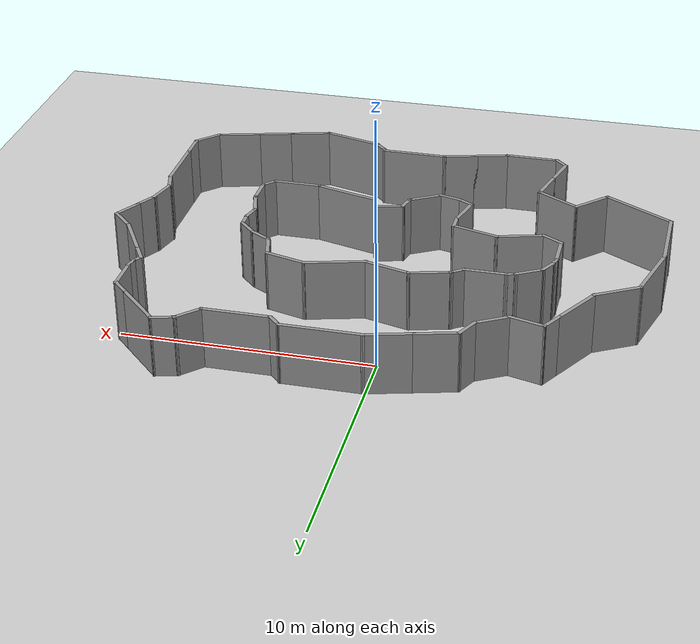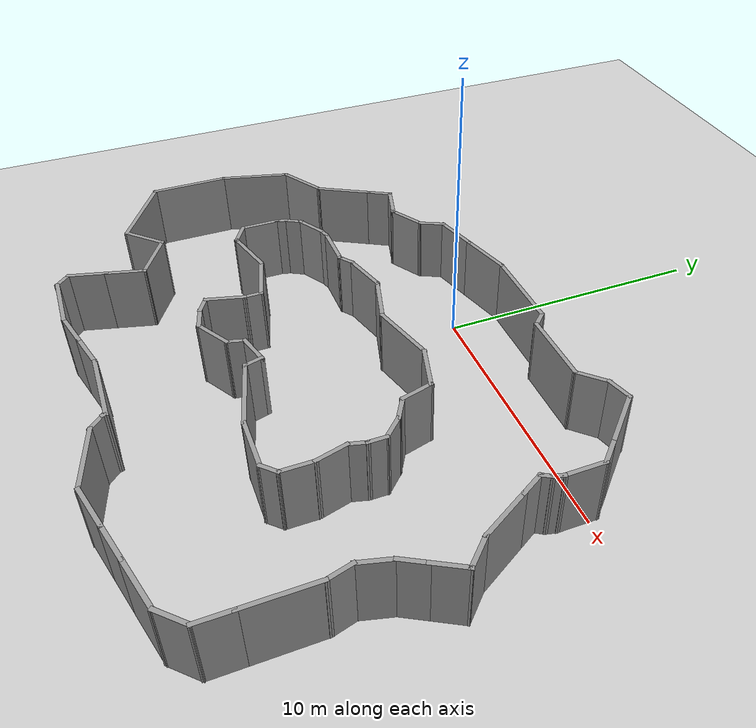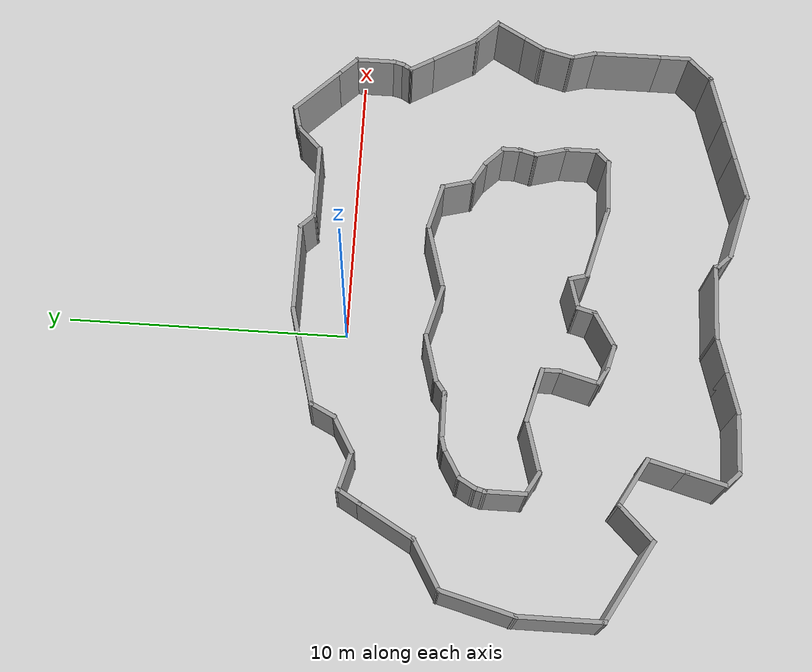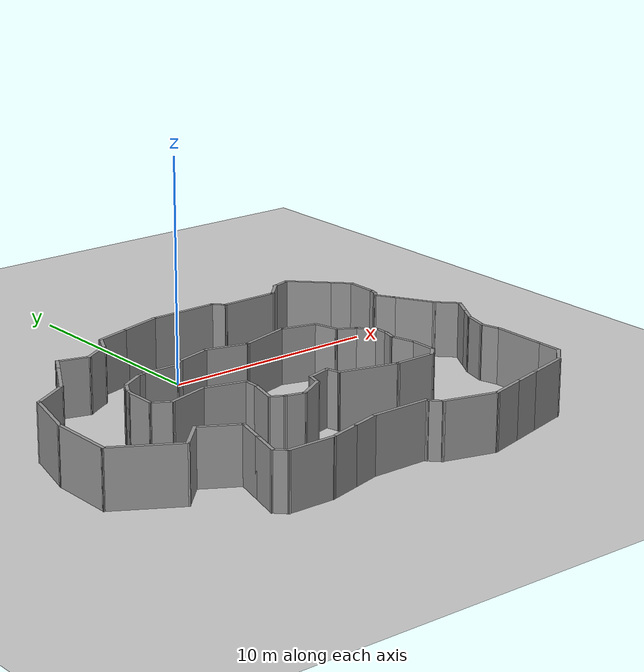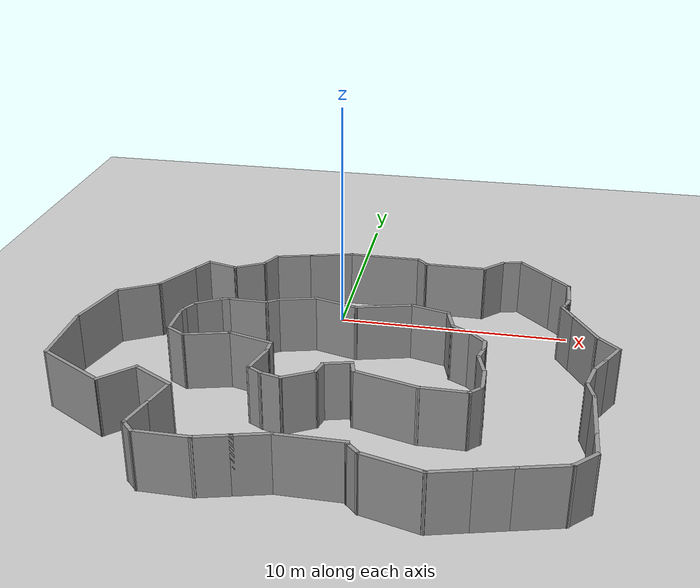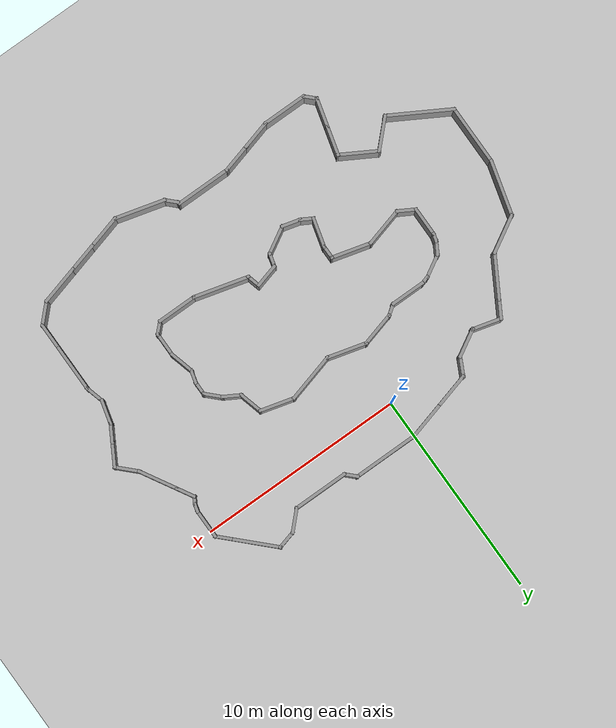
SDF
<sdf version="1.7">
 <world name="default">
  <light name="sun" type="directional">
   <pose>0 0 10 0 -0 0</pose>
   <diffuse>0.8 0.8 0.8 1</diffuse>
   <specular>0.2 0.2 0.2 1</specular>
   <attenuation>
    <range>1000</range>
    <constant>0.9</constant>
    <linear>0.01</linear>
    <quadratic>0.001</quadratic>
   </attenuation>
   <direction>-0.5 0.1 -0.9</direction>
   <spot><inner_angle>0</inner_angle><outer_angle>0</outer_angle><falloff>0</falloff></spot>
  </light>
  <model name="ground_plane">
   <static>1</static>
   <link name="link">
    <collision name="collision">
     <geometry><plane><normal>0 0 1</normal><size>100 100</size></plane></geometry>
     <surface>
      <contact><collide_bitmask>65535</collide_bitmask></contact>
      <friction><ode><mu>100</mu><mu2>50</mu2></ode></friction>
     </surface>
    </collision>
    <visual name="visual">
     <cast_shadows>0</cast_shadows>
     <geometry><plane><normal>0 0 1</normal><size>100 100</size></plane></geometry>
     <material>
      <script><uri>file://media/materials/scripts/gazebo.material</uri><name>Gazebo/Grey</name></script>
     </material>
    </visual>
   </link>
  </model>
  <gravity>0 0 -9.8</gravity>
  <magnetic_field>6e-06 2.3e-05 -4.2e-05</magnetic_field>
  <atmosphere type="adiabatic"/>
  <physics type="ode">
   <max_step_size>0.001</max_step_size>
   <real_time_factor>1</real_time_factor>
   <real_time_update_rate>1000</real_time_update_rate>
  </physics>
  <scene><ambient>0.4 0.4 0.4 1</ambient><background>0.7 0.7 0.7 1</background><shadows>1</shadows></scene>
  <spherical_coordinates>
   <surface_model>EARTH_WGS84</surface_model>
   <latitude_deg>0</latitude_deg>
   <longitude_deg>0</longitude_deg>
   <elevation>0</elevation>
   <heading_deg>0</heading_deg>
  </spherical_coordinates>
  <model name="Untitled">
   <pose>0.944853 -5.73233 0 0 -0 0</pose>
   <link name="Wall_100">
    <collision name="Wall_100_Collision">
     <geometry><box><size>1 0.15 2.5</size></box></geometry>
     <pose>0 0 1.25 0 -0 0</pose>
    </collision>
    <visual name="Wall_100_Visual">
     <pose>0 0 1.25 0 -0 0</pose>
     <geometry><box><size>1 0.15 2.5</size></box></geometry>
     <material>
      <script><uri>file://media/materials/scripts/gazebo.material</uri><name>Gazebo/Grey</name></script>
      <ambient>1 1 1 1</ambient>
     </material>
     <meta><layer>0</layer></meta>
    </visual>
    <pose>6.45232 8.00074 0 0 -0 0.261799</pose>
   </link>
   <link name="Wall_101">
    <collision name="Wall_101_Collision">
     <geometry><box><size>2.25 0.15 2.5</size></box></geometry>
     <pose>0 0 1.25 0 -0 0</pose>
    </collision>
    <visual name="Wall_101_Visual">
     <pose>0 0 1.25 0 -0 0</pose>
     <geometry><box><size>2.25 0.15 2.5</size></box></geometry>
     <material>
      <script><uri>file://media/materials/scripts/gazebo.material</uri><name>Gazebo/Grey</name></script>
      <ambient>1 1 1 1</ambient>
     </material>
     <meta><layer>0</layer></meta>
    </visual>
    <pose>7.6053 7.36828 0 0 -0 -0.785398</pose>
   </link>
   <link name="Wall_102">
    <collision name="Wall_102_Collision">
     <geometry><box><size>1 0.15 2.5</size></box></geometry>
     <pose>0 0 1.25 0 -0 0</pose>
    </collision>
    <visual name="Wall_102_Visual">
     <pose>0 0 1.25 0 -0 0</pose>
     <geometry><box><size>1 0.15 2.5</size></box></geometry>
     <material>
      <script><uri>file://media/materials/scripts/gazebo.material</uri><name>Gazebo/Grey</name></script>
      <ambient>1 1 1 1</ambient>
     </material>
     <meta><layer>0</layer></meta>
    </visual>
    <pose>8.64828 6.32529 0 0 -0 -0.785398</pose>
   </link>
   <link name="Wall_103">
    <collision name="Wall_103_Collision">
     <geometry><box><size>1.5 0.15 2.5</size></box></geometry>
     <pose>0 0 1.25 0 -0 0</pose>
    </collision>
    <visual name="Wall_103_Visual">
     <pose>0 0 1.25 0 -0 0</pose>
     <geometry><box><size>1.5 0.15 2.5</size></box></geometry>
     <material>
      <script><uri>file://media/materials/scripts/gazebo.material</uri><name>Gazebo/Grey</name></script>
      <ambient>1 1 1 1</ambient>
     </material>
     <meta><layer>0</layer></meta>
    </visual>
    <pose>8.94881 5.34977 0 0 -0 -1.5708</pose>
   </link>
   <link name="Wall_104">
    <collision name="Wall_104_Collision">
     <geometry><box><size>0.5 0.15 2.5</size></box></geometry>
     <pose>0 0 1.25 0 -0 0</pose>
    </collision>
    <visual name="Wall_104_Visual">
     <pose>0 0 1.25 0 -0 0</pose>
     <geometry><box><size>0.5 0.15 2.5</size></box></geometry>
     <material>
      <script><uri>file://media/materials/scripts/gazebo.material</uri><name>Gazebo/Grey</name></script>
      <ambient>1 1 1 1</ambient>
     </material>
     <meta><layer>0</layer></meta>
    </visual>
    <pose>8.90351 4.50574 0 0 -0 -1.8326</pose>
   </link>
   <link name="Wall_105">
    <collision name="Wall_105_Collision">
     <geometry><box><size>0.5 0.15 2.5</size></box></geometry>
     <pose>0 0 1.25 0 -0 0</pose>
    </collision>
    <visual name="Wall_105_Visual">
     <pose>0 0 1.25 0 -0 0</pose>
     <geometry><box><size>0.5 0.15 2.5</size></box></geometry>
     <material>
      <script><uri>file://media/materials/scripts/gazebo.material</uri><name>Gazebo/Grey</name></script>
      <ambient>1 1 1 1</ambient>
     </material>
     <meta><layer>0</layer></meta>
    </visual>
    <pose>8.77072 4.18515 0 0 -0 -2.0944</pose>
   </link>
   <link name="Wall_106">
    <collision name="Wall_106_Collision">
     <geometry><box><size>1 0.15 2.5</size></box></geometry>
     <pose>0 0 1.25 0 -0 0</pose>
    </collision>
    <visual name="Wall_106_Visual">
     <pose>0 0 1.25 0 -0 0</pose>
     <geometry><box><size>1 0.15 2.5</size></box></geometry>
     <material>
      <script><uri>file://media/materials/scripts/gazebo.material</uri><name>Gazebo/Grey</name></script>
      <ambient>1 1 1 1</ambient>
     </material>
     <meta><layer>0</layer></meta>
    </visual>
    <pose>8.89572 3.66553 0 0 -0 -1.0472</pose>
   </link>
   <link name="Wall_107">
    <collision name="Wall_107_Collision">
     <geometry><box><size>2 0.15 2.5</size></box></geometry>
     <pose>0 0 1.25 0 -0 0</pose>
    </collision>
    <visual name="Wall_107_Visual">
     <pose>0 0 1.25 0 -0 0</pose>
     <geometry><box><size>2 0.15 2.5</size></box></geometry>
     <material>
      <script><uri>file://media/materials/scripts/gazebo.material</uri><name>Gazebo/Grey</name></script>
      <ambient>1 1 1 1</ambient>
     </material>
     <meta><layer>0</layer></meta>
    </visual>
    <pose>9.57072 2.4964 0 0 -0 -1.0472</pose>
   </link>
   <link name="Wall_108">
    <collision name="Wall_108_Collision">
     <geometry><box><size>1.25 0.15 2.5</size></box></geometry>
     <pose>0 0 1.25 0 -0 0</pose>
    </collision>
    <visual name="Wall_108_Visual">
     <pose>0 0 1.25 0 -0 0</pose>
     <geometry><box><size>1.25 0.15 2.5</size></box></geometry>
     <material>
      <script><uri>file://media/materials/scripts/gazebo.material</uri><name>Gazebo/Grey</name></script>
      <ambient>1 1 1 1</ambient>
     </material>
     <meta><layer>0</layer></meta>
    </visual>
    <pose>10.4221 1.30641 0 0 -0 -0.785398</pose>
   </link>
   <link name="Wall_109">
    <collision name="Wall_109_Collision">
     <geometry><box><size>1.25 0.15 2.5</size></box></geometry>
     <pose>0 0 1.25 0 -0 0</pose>
    </collision>
    <visual name="Wall_109_Visual">
     <pose>0 0 1.25 0 -0 0</pose>
     <geometry><box><size>1.25 0.15 2.5</size></box></geometry>
     <material>
      <script><uri>file://media/materials/scripts/gazebo.material</uri><name>Gazebo/Grey</name></script>
      <ambient>1 1 1 1</ambient>
     </material>
     <meta><layer>0</layer></meta>
    </visual>
    <pose>10.536 0.44119 0 0 -0 -2.0944</pose>
   </link>
   <link name="Wall_110">
    <collision name="Wall_110_Collision">
     <geometry><box><size>1 0.15 2.5</size></box></geometry>
     <pose>0 0 1.25 0 -0 0</pose>
    </collision>
    <visual name="Wall_110_Visual">
     <pose>0 0 1.25 0 -0 0</pose>
     <geometry><box><size>1 0.15 2.5</size></box></geometry>
     <material>
      <script><uri>file://media/materials/scripts/gazebo.material</uri><name>Gazebo/Grey</name></script>
      <ambient>1 1 1 1</ambient>
     </material>
     <meta><layer>0</layer></meta>
    </visual>
    <pose>10.0485 -0.403184 0 0 -0 -2.0944</pose>
   </link>
   <link name="Wall_111">
    <collision name="Wall_111_Collision">
     <geometry><box><size>1.25 0.15 2.5</size></box></geometry>
     <pose>0 0 1.25 0 -0 0</pose>
    </collision>
    <visual name="Wall_111_Visual">
     <pose>0 0 1.25 0 -0 0</pose>
     <geometry><box><size>1.25 0.15 2.5</size></box></geometry>
     <material>
      <script><uri>file://media/materials/scripts/gazebo.material</uri><name>Gazebo/Grey</name></script>
      <ambient>1 1 1 1</ambient>
     </material>
     <meta><layer>0</layer></meta>
    </visual>
    <pose>9.69369 -1.3025 0 0 -0 -1.8326</pose>
   </link>
   <link name="Wall_112">
    <collision name="Wall_112_Collision">
     <geometry><box><size>1 0.15 2.5</size></box></geometry>
     <pose>0 0 1.25 0 -0 0</pose>
    </collision>
    <visual name="Wall_112_Visual">
     <pose>0 0 1.25 0 -0 0</pose>
     <geometry><box><size>1 0.15 2.5</size></box></geometry>
     <material>
      <script><uri>file://media/materials/scripts/gazebo.material</uri><name>Gazebo/Grey</name></script>
      <ambient>1 1 1 1</ambient>
     </material>
     <meta><layer>0</layer></meta>
    </visual>
    <pose>9.66133 -2.24428 0 0 -0 -1.309</pose>
   </link>
   <link name="Wall_113">
    <collision name="Wall_113_Collision">
     <geometry><box><size>2.5 0.15 2.5</size></box></geometry>
     <pose>0 0 1.25 0 -0 0</pose>
    </collision>
    <visual name="Wall_113_Visual">
     <pose>0 0 1.25 0 -0 0</pose>
     <geometry><box><size>2.5 0.15 2.5</size></box></geometry>
     <material>
      <script><uri>file://media/materials/scripts/gazebo.material</uri><name>Gazebo/Grey</name></script>
      <ambient>1 1 1 1</ambient>
     </material>
     <meta><layer>0</layer></meta>
    </visual>
    <pose>9.77133 -3.8298 0 0 -0 -1.5708</pose>
   </link>
   <link name="Wall_114">
    <collision name="Wall_114_Collision">
     <geometry><box><size>1.25 0.15 2.5</size></box></geometry>
     <pose>0 0 1.25 0 -0 0</pose>
    </collision>
    <visual name="Wall_114_Visual">
     <pose>0 0 1.25 0 -0 0</pose>
     <geometry><box><size>1.25 0.15 2.5</size></box></geometry>
     <material>
      <script><uri>file://media/materials/scripts/gazebo.material</uri><name>Gazebo/Grey</name></script>
      <ambient>1 1 1 1</ambient>
     </material>
     <meta><layer>0</layer></meta>
    </visual>
    <pose>9.77133 -5.5548 0 0 -0 -1.5708</pose>
   </link>
   <link name="Wall_115">
    <collision name="Wall_115_Collision">
     <geometry><box><size>1.25 0.15 2.5</size></box></geometry>
     <pose>0 0 1.25 0 -0 0</pose>
    </collision>
    <visual name="Wall_115_Visual">
     <pose>0 0 1.25 0 -0 0</pose>
     <geometry><box><size>1.25 0.15 2.5</size></box></geometry>
     <material>
      <script><uri>file://media/materials/scripts/gazebo.material</uri><name>Gazebo/Grey</name></script>
      <ambient>1 1 1 1</ambient>
     </material>
     <meta><layer>0</layer></meta>
    </visual>
    <pose>9.38242 -6.49371 0 0 -0 -2.35619</pose>
   </link>
   <link name="Wall_116">
    <collision name="Wall_116_Collision">
     <geometry><box><size>2 0.15 2.5</size></box></geometry>
     <pose>0 0 1.25 0 -0 0</pose>
    </collision>
    <visual name="Wall_116_Visual">
     <pose>0 0 1.25 0 -0 0</pose>
     <geometry><box><size>2 0.15 2.5</size></box></geometry>
     <material>
      <script><uri>file://media/materials/scripts/gazebo.material</uri><name>Gazebo/Grey</name></script>
      <ambient>1 1 1 1</ambient>
     </material>
     <meta><layer>0</layer></meta>
    </visual>
    <pose>8.10003 -7.12203 0 0 -0 -2.87979</pose>
   </link>
   <link name="Wall_117">
    <collision name="Wall_117_Collision">
     <geometry><box><size>1.5 0.15 2.5</size></box></geometry>
     <pose>0 0 1.25 0 -0 0</pose>
    </collision>
    <visual name="Wall_117_Visual">
     <pose>0 0 1.25 0 -0 0</pose>
     <geometry><box><size>1.5 0.15 2.5</size></box></geometry>
     <material>
      <script><uri>file://media/materials/scripts/gazebo.material</uri><name>Gazebo/Grey</name></script>
      <ambient>1 1 1 1</ambient>
     </material>
     <meta><layer>0</layer></meta>
    </visual>
    <pose>6.55455 -7.53614 0 0 -0 -2.87979</pose>
   </link>
   <link name="Wall_118">
    <collision name="Wall_118_Collision">
     <geometry><box><size>1.75 0.15 2.5</size></box></geometry>
     <pose>0 0 1.25 0 -0 0</pose>
    </collision>
    <visual name="Wall_118_Visual">
     <pose>0 0 1.25 0 -0 0</pose>
     <geometry><box><size>1.75 0.15 2.5</size></box></geometry>
     <material>
      <script><uri>file://media/materials/scripts/gazebo.material</uri><name>Gazebo/Grey</name></script>
      <ambient>1 1 1 1</ambient>
     </material>
     <meta><layer>0</layer></meta>
    </visual>
    <pose>5.12981 -7.91789 0 0 -0 -2.87979</pose>
   </link>
   <link name="Wall_119">
    <collision name="Wall_119_Collision">
     <geometry><box><size>2.5 0.15 2.5</size></box></geometry>
     <pose>0 0 1.25 0 -0 0</pose>
    </collision>
    <visual name="Wall_119_Visual">
     <pose>0 0 1.25 0 -0 0</pose>
     <geometry><box><size>2.5 0.15 2.5</size></box></geometry>
     <material>
      <script><uri>file://media/materials/scripts/gazebo.material</uri><name>Gazebo/Grey</name></script>
      <ambient>1 1 1 1</ambient>
     </material>
     <meta><layer>0</layer></meta>
    </visual>
    <pose>3.22211 -7.82084 0 0 -0 2.87979</pose>
   </link>
   <link name="Wall_120">
    <collision name="Wall_120_Collision">
     <geometry><box><size>0.75 0.15 2.5</size></box></geometry>
     <pose>0 0 1.25 0 -0 0</pose>
    </collision>
    <visual name="Wall_120_Visual">
     <pose>0 0 1.25 0 -0 0</pose>
     <geometry><box><size>0.75 0.15 2.5</size></box></geometry>
     <material>
      <script><uri>file://media/materials/scripts/gazebo.material</uri><name>Gazebo/Grey</name></script>
      <ambient>1 1 1 1</ambient>
     </material>
     <meta><layer>0</layer></meta>
    </visual>
    <pose>1.87501 -7.30459 0 0 -0 2.35619</pose>
   </link>
   <link name="Wall_121">
    <collision name="Wall_121_Collision">
     <geometry><box><size>0.25 0.15 2.5</size></box></geometry>
     <pose>0 0 1.25 0 -0 0</pose>
    </collision>
    <visual name="Wall_121_Visual">
     <pose>0 0 1.25 0 -0 0</pose>
     <geometry><box><size>0.25 0.15 2.5</size></box></geometry>
     <material>
      <script><uri>file://media/materials/scripts/gazebo.material</uri><name>Gazebo/Grey</name></script>
      <ambient>1 1 1 1</ambient>
     </material>
     <meta><layer>0</layer></meta>
    </visual>
    <pose>1.64994 -7.04416 0 0 -0 1.8326</pose>
   </link>
   <link name="Wall_122">
    <collision name="Wall_122_Collision">
     <geometry><box><size>2.75 0.15 2.5</size></box></geometry>
     <pose>0 0 1.25 0 -0 0</pose>
    </collision>
    <visual name="Wall_122_Visual">
     <pose>0 0 1.25 0 -0 0</pose>
     <geometry><box><size>2.75 0.15 2.5</size></box></geometry>
     <material>
      <script><uri>file://media/materials/scripts/gazebo.material</uri><name>Gazebo/Grey</name></script>
      <ambient>1 1 1 1</ambient>
     </material>
     <meta><layer>0</layer></meta>
    </visual>
    <pose>0.336998 -6.99587 0 0 -0 3.14159</pose>
   </link>
   <link name="Wall_123">
    <collision name="Wall_123_Collision">
     <geometry><box><size>1.5 0.15 2.5</size></box></geometry>
     <pose>0 0 1.25 0 -0 0</pose>
    </collision>
    <visual name="Wall_123_Visual">
     <pose>0 0 1.25 0 -0 0</pose>
     <geometry><box><size>1.5 0.15 2.5</size></box></geometry>
     <material>
      <script><uri>file://media/materials/scripts/gazebo.material</uri><name>Gazebo/Grey</name></script>
      <ambient>1 1 1 1</ambient>
     </material>
     <meta><layer>0</layer></meta>
    </visual>
    <pose>-1.615 -7.17057 0 0 -0 -2.87979</pose>
   </link>
   <link name="Wall_124">
    <collision name="Wall_124_Collision">
     <geometry><box><size>1.5 0.15 2.5</size></box></geometry>
     <pose>0 0 1.25 0 -0 0</pose>
    </collision>
    <visual name="Wall_124_Visual">
     <pose>0 0 1.25 0 -0 0</pose>
     <geometry><box><size>1.5 0.15 2.5</size></box></geometry>
     <material>
      <script><uri>file://media/materials/scripts/gazebo.material</uri><name>Gazebo/Grey</name></script>
      <ambient>1 1 1 1</ambient>
     </material>
     <meta><layer>0</layer></meta>
    </visual>
    <pose>-2.919 -7.51998 0 0 -0 -2.87979</pose>
   </link>
   <link name="Wall_125">
    <collision name="Wall_125_Collision">
     <geometry><box><size>2.25 0.15 2.5</size></box></geometry>
     <pose>0 0 1.25 0 -0 0</pose>
    </collision>
    <visual name="Wall_125_Visual">
     <pose>0 0 1.25 0 -0 0</pose>
     <geometry><box><size>2.25 0.15 2.5</size></box></geometry>
     <material>
      <script><uri>file://media/materials/scripts/gazebo.material</uri><name>Gazebo/Grey</name></script>
      <ambient>1 1 1 1</ambient>
     </material>
     <meta><layer>0</layer></meta>
    </visual>
    <pose>-4.621 -7.69468 0 0 -0 3.14159</pose>
   </link>
   <link name="Wall_126">
    <collision name="Wall_126_Collision">
     <geometry><box><size>0.75 0.15 2.5</size></box></geometry>
     <pose>0 0 1.25 0 -0 0</pose>
    </collision>
    <visual name="Wall_126_Visual">
     <pose>0 0 1.25 0 -0 0</pose>
     <geometry><box><size>0.75 0.15 2.5</size></box></geometry>
     <material>
      <script><uri>file://media/materials/scripts/gazebo.material</uri><name>Gazebo/Grey</name></script>
      <ambient>1 1 1 1</ambient>
     </material>
     <meta><layer>0</layer></meta>
    </visual>
    <pose>-5.88313 -7.48255 0 0 -0 2.35619</pose>
   </link>
   <link name="Wall_127">
    <collision name="Wall_127_Collision">
     <geometry><box><size>1.5 0.15 2.5</size></box></geometry>
     <pose>0 0 1.25 0 -0 0</pose>
    </collision>
    <visual name="Wall_127_Visual">
     <pose>0 0 1.25 0 -0 0</pose>
     <geometry><box><size>1.5 0.15 2.5</size></box></geometry>
     <material>
      <script><uri>file://media/materials/scripts/gazebo.material</uri><name>Gazebo/Grey</name></script>
      <ambient>1 1 1 1</ambient>
     </material>
     <meta><layer>0</layer></meta>
    </visual>
    <pose>-5.92056 -6.61841 0 0 -0 1.309</pose>
   </link>
   <link name="Wall_129">
    <collision name="Wall_129_Collision">
     <geometry><box><size>1.5 0.15 2.5</size></box></geometry>
     <pose>0 0 1.25 0 -0 0</pose>
    </collision>
    <visual name="Wall_129_Visual">
     <pose>0 0 1.25 0 -0 0</pose>
     <geometry><box><size>1.5 0.15 2.5</size></box></geometry>
     <material>
      <script><uri>file://media/materials/scripts/gazebo.material</uri><name>Gazebo/Grey</name></script>
      <ambient>1 1 1 1</ambient>
     </material>
     <meta><layer>0</layer></meta>
    </visual>
    <pose>-5.57116 -5.31442 0 0 -0 1.309</pose>
   </link>
   <link name="Wall_130">
    <collision name="Wall_130_Collision">
     <geometry><box><size>2 0.15 2.5</size></box></geometry>
     <pose>0 0 1.25 0 -0 0</pose>
    </collision>
    <visual name="Wall_130_Visual">
     <pose>0 0 1.25 0 -0 0</pose>
     <geometry><box><size>2 0.15 2.5</size></box></geometry>
     <material>
      <script><uri>file://media/materials/scripts/gazebo.material</uri><name>Gazebo/Grey</name></script>
      <ambient>1 1 1 1</ambient>
     </material>
     <meta><layer>0</layer></meta>
    </visual>
    <pose>-6.19753 -4.19991 0 0 -0 2.61799</pose>
   </link>
   <link name="Wall_131">
    <collision name="Wall_131_Collision">
     <geometry><box><size>1.75 0.15 2.5</size></box></geometry>
     <pose>0 0 1.25 0 -0 0</pose>
    </collision>
    <visual name="Wall_131_Visual">
     <pose>0 0 1.25 0 -0 0</pose>
     <geometry><box><size>1.75 0.15 2.5</size></box></geometry>
     <material>
      <script><uri>file://media/materials/scripts/gazebo.material</uri><name>Gazebo/Grey</name></script>
      <ambient>1 1 1 1</ambient>
     </material>
     <meta><layer>0</layer></meta>
    </visual>
    <pose>-7.56429 -4.3031 0 0 -0 -2.35619</pose>
   </link>
   <link name="Wall_132">
    <collision name="Wall_132_Collision">
     <geometry><box><size>3.25 0.15 2.5</size></box></geometry>
     <pose>0 0 1.25 0 -0 0</pose>
    </collision>
    <visual name="Wall_132_Visual">
     <pose>0 0 1.25 0 -0 0</pose>
     <geometry><box><size>3.25 0.15 2.5</size></box></geometry>
     <material>
      <script><uri>file://media/materials/scripts/gazebo.material</uri><name>Gazebo/Grey</name></script>
      <ambient>1 1 1 1</ambient>
     </material>
     <meta><layer>0</layer></meta>
    </visual>
    <pose>-9.47231 -4.09379 0 0 -0 2.61799</pose>
   </link>
   <link name="Wall_133">
    <collision name="Wall_133_Collision">
     <geometry><box><size>3 0.15 2.5</size></box></geometry>
     <pose>0 0 1.25 0 -0 0</pose>
    </collision>
    <visual name="Wall_133_Visual">
     <pose>0 0 1.25 0 -0 0</pose>
     <geometry><box><size>3 0.15 2.5</size></box></geometry>
     <material>
      <script><uri>file://media/materials/scripts/gazebo.material</uri><name>Gazebo/Grey</name></script>
      <ambient>1 1 1 1</ambient>
     </material>
     <meta><layer>0</layer></meta>
    </visual>
    <pose>-10.8147 -1.89379 0 0 -0 1.5708</pose>
   </link>
   <link name="Wall_134">
    <collision name="Wall_134_Collision">
     <geometry><box><size>2.75 0.15 2.5</size></box></geometry>
     <pose>0 0 1.25 0 -0 0</pose>
    </collision>
    <visual name="Wall_134_Visual">
     <pose>0 0 1.25 0 -0 0</pose>
     <geometry><box><size>2.75 0.15 2.5</size></box></geometry>
     <material>
      <script><uri>file://media/materials/scripts/gazebo.material</uri><name>Gazebo/Grey</name></script>
      <ambient>1 1 1 1</ambient>
     </material>
     <meta><layer>0</layer></meta>
    </visual>
    <pose>-10.4782 0.786917 0 0 -0 1.309</pose>
   </link>
   <link name="Wall_135">
    <collision name="Wall_135_Collision">
     <geometry><box><size>2 0.15 2.5</size></box></geometry>
     <pose>0 0 1.25 0 -0 0</pose>
    </collision>
    <visual name="Wall_135_Visual">
     <pose>0 0 1.25 0 -0 0</pose>
     <geometry><box><size>2 0.15 2.5</size></box></geometry>
     <material>
      <script><uri>file://media/materials/scripts/gazebo.material</uri><name>Gazebo/Grey</name></script>
      <ambient>1 1 1 1</ambient>
     </material>
     <meta><layer>0</layer></meta>
    </visual>
    <pose>-9.34065 2.50512 0 0 -0 0.523599</pose>
   </link>
   <link name="Wall_136">
    <collision name="Wall_136_Collision">
     <geometry><box><size>2.25 0.15 2.5</size></box></geometry>
     <pose>0 0 1.25 0 -0 0</pose>
    </collision>
    <visual name="Wall_136_Visual">
     <pose>0 0 1.25 0 -0 0</pose>
     <geometry><box><size>2.25 0.15 2.5</size></box></geometry>
     <material>
      <script><uri>file://media/materials/scripts/gazebo.material</uri><name>Gazebo/Grey</name></script>
      <ambient>1 1 1 1</ambient>
     </material>
     <meta><layer>0</layer></meta>
    </visual>
    <pose>-8.01457 3.87695 0 0 -0 1.0472</pose>
   </link>
   <link name="Wall_137">
    <collision name="Wall_137_Collision">
     <geometry><box><size>1 0.15 2.5</size></box></geometry>
     <pose>0 0 1.25 0 -0 0</pose>
    </collision>
    <visual name="Wall_137_Visual">
     <pose>0 0 1.25 0 -0 0</pose>
     <geometry><box><size>1 0.15 2.5</size></box></geometry>
     <material>
      <script><uri>file://media/materials/scripts/gazebo.material</uri><name>Gazebo/Grey</name></script>
      <ambient>1 1 1 1</ambient>
     </material>
     <meta><layer>0</layer></meta>
    </visual>
    <pose>-7.27707 5.15433 0 0 -0 1.0472</pose>
   </link>
   <link name="Wall_138">
    <collision name="Wall_138_Collision">
     <geometry><box><size>1.5 0.15 2.5</size></box></geometry>
     <pose>0 0 1.25 0 -0 0</pose>
    </collision>
    <visual name="Wall_138_Visual">
     <pose>0 0 1.25 0 -0 0</pose>
     <geometry><box><size>1.5 0.15 2.5</size></box></geometry>
     <material>
      <script><uri>file://media/materials/scripts/gazebo.material</uri><name>Gazebo/Grey</name></script>
      <ambient>1 1 1 1</ambient>
     </material>
     <meta><layer>0</layer></meta>
    </visual>
    <pose>-6.41257 5.34769 0 0 -0 -0.261799</pose>
   </link>
   <link name="Wall_139">
    <collision name="Wall_139_Collision">
     <geometry><box><size>1.5 0.15 2.5</size></box></geometry>
     <pose>0 0 1.25 0 -0 0</pose>
    </collision>
    <visual name="Wall_139_Visual">
     <pose>0 0 1.25 0 -0 0</pose>
     <geometry><box><size>1.5 0.15 2.5</size></box></geometry>
     <material>
      <script><uri>file://media/materials/scripts/gazebo.material</uri><name>Gazebo/Grey</name></script>
      <ambient>1 1 1 1</ambient>
     </material>
     <meta><layer>0</layer></meta>
    </visual>
    <pose>-5.17601 5.51049 0 0 -0 0.523599</pose>
   </link>
   <link name="Wall_140">
    <collision name="Wall_140_Collision">
     <geometry><box><size>1.04052 0.15 2.5</size></box></geometry>
     <pose>0 0 1.25 0 -0 0</pose>
    </collision>
    <visual name="Wall_140_Visual">
     <pose>0 0 1.25 0 -0 0</pose>
     <geometry><box><size>1.04052 0.15 2.5</size></box></geometry>
     <material>
      <script><uri>file://media/materials/scripts/gazebo.material</uri><name>Gazebo/Grey</name></script>
      <ambient>1 1 1 1</ambient>
     </material>
     <meta><layer>0</layer></meta>
    </visual>
    <pose>-4.39208 6.24613 0 0 -0 1.10657</pose>
   </link>
   <link name="Wall_60">
    <collision name="Wall_60_Collision">
     <geometry><box><size>1.75 0.15 2.5</size></box></geometry>
     <pose>0 0 1.25 0 -0 0</pose>
    </collision>
    <visual name="Wall_60_Visual">
     <pose>0 0 1.25 0 -0 0</pose>
     <geometry><box><size>1.75 0.15 2.5</size></box></geometry>
     <material>
      <script><uri>file://media/materials/scripts/gazebo.material</uri><name>Gazebo/Grey</name></script>
      <ambient>1 1 1 1</ambient>
     </material>
     <meta><layer>0</layer></meta>
    </visual>
    <pose>-2.31121 2.71703 0 0 -0 0.261799</pose>
   </link>
   <link name="Wall_61">
    <collision name="Wall_61_Collision">
     <geometry><box><size>2 0.15 2.5</size></box></geometry>
     <pose>0 0 1.25 0 -0 0</pose>
    </collision>
    <visual name="Wall_61_Visual">
     <pose>0 0 1.25 0 -0 0</pose>
     <geometry><box><size>2 0.15 2.5</size></box></geometry>
     <material>
      <script><uri>file://media/materials/scripts/gazebo.material</uri><name>Gazebo/Grey</name></script>
      <ambient>1 1 1 1</ambient>
     </material>
     <meta><layer>0</layer></meta>
    </visual>
    <pose>-0.644984 2.68467 0 0 -0 -0.261799</pose>
   </link>
   <link name="Wall_62">
    <collision name="Wall_62_Collision">
     <geometry><box><size>2.5 0.15 2.5</size></box></geometry>
     <pose>0 0 1.25 0 -0 0</pose>
    </collision>
    <visual name="Wall_62_Visual">
     <pose>0 0 1.25 0 -0 0</pose>
     <geometry><box><size>2.5 0.15 2.5</size></box></geometry>
     <material>
      <script><uri>file://media/materials/scripts/gazebo.material</uri><name>Gazebo/Grey</name></script>
      <ambient>1 1 1 1</ambient>
     </material>
     <meta><layer>0</layer></meta>
    </visual>
    <pose>1.38346 2.74938 0 0 -0 0.261799</pose>
   </link>
   <link name="Wall_63">
    <collision name="Wall_63_Collision">
     <geometry><box><size>1.75 0.15 2.5</size></box></geometry>
     <pose>0 0 1.25 0 -0 0</pose>
    </collision>
    <visual name="Wall_63_Visual">
     <pose>0 0 1.25 0 -0 0</pose>
     <geometry><box><size>1.75 0.15 2.5</size></box></geometry>
     <material>
      <script><uri>file://media/materials/scripts/gazebo.material</uri><name>Gazebo/Grey</name></script>
      <ambient>1 1 1 1</ambient>
     </material>
     <meta><layer>0</layer></meta>
    </visual>
    <pose>3.29116 2.84644 0 0 -0 -0.261799</pose>
   </link>
   <link name="Wall_64">
    <collision name="Wall_64_Collision">
     <geometry><box><size>1.25 0.15 2.5</size></box></geometry>
     <pose>0 0 1.25 0 -0 0</pose>
    </collision>
    <visual name="Wall_64_Visual">
     <pose>0 0 1.25 0 -0 0</pose>
     <geometry><box><size>1.25 0.15 2.5</size></box></geometry>
     <material>
      <script><uri>file://media/materials/scripts/gazebo.material</uri><name>Gazebo/Grey</name></script>
      <ambient>1 1 1 1</ambient>
     </material>
     <meta><layer>0</layer></meta>
    </visual>
    <pose>4.20625 2.10812 0 0 -0 -1.309</pose>
   </link>
   <link name="Wall_65">
    <collision name="Wall_65_Collision">
     <geometry><box><size>1 0.15 2.5</size></box></geometry>
     <pose>0 0 1.25 0 -0 0</pose>
    </collision>
    <visual name="Wall_65_Visual">
     <pose>0 0 1.25 0 -0 0</pose>
     <geometry><box><size>1 0.15 2.5</size></box></geometry>
     <material>
      <script><uri>file://media/materials/scripts/gazebo.material</uri><name>Gazebo/Grey</name></script>
      <ambient>1 1 1 1</ambient>
     </material>
     <meta><layer>0</layer></meta>
    </visual>
    <pose>4.71667 1.36436 0 0 -0 -0.523599</pose>
   </link>
   <link name="Wall_66">
    <collision name="Wall_66_Collision">
     <geometry><box><size>1 0.15 2.5</size></box></geometry>
     <pose>0 0 1.25 0 -0 0</pose>
    </collision>
    <visual name="Wall_66_Visual">
     <pose>0 0 1.25 0 -0 0</pose>
     <geometry><box><size>1 0.15 2.5</size></box></geometry>
     <material>
      <script><uri>file://media/materials/scripts/gazebo.material</uri><name>Gazebo/Grey</name></script>
      <ambient>1 1 1 1</ambient>
     </material>
     <meta><layer>0</layer></meta>
    </visual>
    <pose>5.38525 0.851343 0 0 -0 -0.785398</pose>
   </link>
   <link name="Wall_67">
    <collision name="Wall_67_Collision">
     <geometry><box><size>0.75 0.15 2.5</size></box></geometry>
     <pose>0 0 1.25 0 -0 0</pose>
    </collision>
    <visual name="Wall_67_Visual">
     <pose>0 0 1.25 0 -0 0</pose>
     <geometry><box><size>0.75 0.15 2.5</size></box></geometry>
     <material>
      <script><uri>file://media/materials/scripts/gazebo.material</uri><name>Gazebo/Grey</name></script>
      <ambient>1 1 1 1</ambient>
     </material>
     <meta><layer>0</layer></meta>
    </visual>
    <pose>5.68577 0.250823 0 0 -0 -1.5708</pose>
   </link>
   <link name="Wall_68">
    <collision name="Wall_68_Collision">
     <geometry><box><size>0.75 0.15 2.5</size></box></geometry>
     <pose>0 0 1.25 0 -0 0</pose>
    </collision>
    <visual name="Wall_68_Visual">
     <pose>0 0 1.25 0 -0 0</pose>
     <geometry><box><size>0.75 0.15 2.5</size></box></geometry>
     <material>
      <script><uri>file://media/materials/scripts/gazebo.material</uri><name>Gazebo/Grey</name></script>
      <ambient>1 1 1 1</ambient>
     </material>
     <meta><layer>0</layer></meta>
    </visual>
    <pose>5.60812 -0.338955 0 0 -0 -1.8326</pose>
   </link>
   <link name="Wall_69">
    <collision name="Wall_69_Collision">
     <geometry><box><size>1.25 0.15 2.5</size></box></geometry>
     <pose>0 0 1.25 0 -0 0</pose>
    </collision>
    <visual name="Wall_69_Visual">
     <pose>0 0 1.25 0 -0 0</pose>
     <geometry><box><size>1.25 0.15 2.5</size></box></geometry>
     <material>
      <script><uri>file://media/materials/scripts/gazebo.material</uri><name>Gazebo/Grey</name></script>
      <ambient>1 1 1 1</ambient>
     </material>
     <meta><layer>0</layer></meta>
    </visual>
    <pose>5.67283 -1.15999 0 0 -0 -1.309</pose>
   </link>
   <link name="Wall_70">
    <collision name="Wall_70_Collision">
     <geometry><box><size>1.25 0.15 2.5</size></box></geometry>
     <pose>0 0 1.25 0 -0 0</pose>
    </collision>
    <visual name="Wall_70_Visual">
     <pose>0 0 1.25 0 -0 0</pose>
     <geometry><box><size>1.25 0.15 2.5</size></box></geometry>
     <material>
      <script><uri>file://media/materials/scripts/gazebo.material</uri><name>Gazebo/Grey</name></script>
      <ambient>1 1 1 1</ambient>
     </material>
     <meta><layer>0</layer></meta>
    </visual>
    <pose>5.81518 -2.24125 0 0 -0 -1.5708</pose>
   </link>
   <link name="Wall_71">
    <collision name="Wall_71_Collision">
     <geometry><box><size>0.75 0.15 2.5</size></box></geometry>
     <pose>0 0 1.25 0 -0 0</pose>
    </collision>
    <visual name="Wall_71_Visual">
     <pose>0 0 1.25 0 -0 0</pose>
     <geometry><box><size>0.75 0.15 2.5</size></box></geometry>
     <material>
      <script><uri>file://media/materials/scripts/gazebo.material</uri><name>Gazebo/Grey</name></script>
      <ambient>1 1 1 1</ambient>
     </material>
     <meta><layer>0</layer></meta>
    </visual>
    <pose>5.60304 -3.00338 0 0 -0 -2.35619</pose>
   </link>
   <link name="Wall_72">
    <collision name="Wall_72_Collision">
     <geometry><box><size>2 0.15 2.5</size></box></geometry>
     <pose>0 0 1.25 0 -0 0</pose>
    </collision>
    <visual name="Wall_72_Visual">
     <pose>0 0 1.25 0 -0 0</pose>
     <geometry><box><size>2 0.15 2.5</size></box></geometry>
     <material>
      <script><uri>file://media/materials/scripts/gazebo.material</uri><name>Gazebo/Grey</name></script>
      <ambient>1 1 1 1</ambient>
     </material>
     <meta><layer>0</layer></meta>
    </visual>
    <pose>4.46591 -3.21551 0 0 -0 3.14159</pose>
   </link>
   <link name="Wall_73">
    <collision name="Wall_73_Collision">
     <geometry><box><size>2.75 0.15 2.5</size></box></geometry>
     <pose>0 0 1.25 0 -0 0</pose>
    </collision>
    <visual name="Wall_73_Visual">
     <pose>0 0 1.25 0 -0 0</pose>
     <geometry><box><size>2.75 0.15 2.5</size></box></geometry>
     <material>
      <script><uri>file://media/materials/scripts/gazebo.material</uri><name>Gazebo/Grey</name></script>
      <ambient>1 1 1 1</ambient>
     </material>
     <meta><layer>0</layer></meta>
    </visual>
    <pose>2.28521 -2.87905 0 0 -0 2.87979</pose>
   </link>
   <link name="Wall_74">
    <collision name="Wall_74_Collision">
     <geometry><box><size>0.75 0.15 2.5</size></box></geometry>
     <pose>0 0 1.25 0 -0 0</pose>
    </collision>
    <visual name="Wall_74_Visual">
     <pose>0 0 1.25 0 -0 0</pose>
     <geometry><box><size>0.75 0.15 2.5</size></box></geometry>
     <material>
      <script><uri>file://media/materials/scripts/gazebo.material</uri><name>Gazebo/Grey</name></script>
      <ambient>1 1 1 1</ambient>
     </material>
     <meta><layer>0</layer></meta>
    </visual>
    <pose>0.95186 -2.25281 0 0 -0 1.8326</pose>
   </link>
   <link name="Wall_75">
    <collision name="Wall_75_Collision">
     <geometry><box><size>1.25 0.15 2.5</size></box></geometry>
     <pose>0 0 1.25 0 -0 0</pose>
    </collision>
    <visual name="Wall_75_Visual">
     <pose>0 0 1.25 0 -0 0</pose>
     <geometry><box><size>1.25 0.15 2.5</size></box></geometry>
     <material>
      <script><uri>file://media/materials/scripts/gazebo.material</uri><name>Gazebo/Grey</name></script>
      <ambient>1 1 1 1</ambient>
     </material>
     <meta><layer>0</layer></meta>
    </visual>
    <pose>0.342955 -2.10538 0 0 -0 -2.87979</pose>
   </link>
   <link name="Wall_76">
    <collision name="Wall_76_Collision">
     <geometry><box><size>0.75 0.15 2.5</size></box></geometry>
     <pose>0 0 1.25 0 -0 0</pose>
    </collision>
    <visual name="Wall_76_Visual">
     <pose>0 0 1.25 0 -0 0</pose>
     <geometry><box><size>0.75 0.15 2.5</size></box></geometry>
     <material>
      <script><uri>file://media/materials/scripts/gazebo.material</uri><name>Gazebo/Grey</name></script>
      <ambient>1 1 1 1</ambient>
     </material>
     <meta><layer>0</layer></meta>
    </visual>
    <pose>-0.26595 -2.53751 0 0 -0 -1.8326</pose>
   </link>
   <link name="Wall_77">
    <collision name="Wall_77_Collision">
     <geometry><box><size>1.5 0.15 2.5</size></box></geometry>
     <pose>0 0 1.25 0 -0 0</pose>
    </collision>
    <visual name="Wall_77_Visual">
     <pose>0 0 1.25 0 -0 0</pose>
     <geometry><box><size>1.5 0.15 2.5</size></box></geometry>
     <material>
      <script><uri>file://media/materials/scripts/gazebo.material</uri><name>Gazebo/Grey</name></script>
      <ambient>1 1 1 1</ambient>
     </material>
     <meta><layer>0</layer></meta>
    </visual>
    <pose>-0.928163 -3.16479 0 0 -0 -2.61799</pose>
   </link>
   <link name="Wall_78">
    <collision name="Wall_78_Collision">
     <geometry><box><size>1 0.15 2.5</size></box></geometry>
     <pose>0 0 1.25 0 -0 0</pose>
    </collision>
    <visual name="Wall_78_Visual">
     <pose>0 0 1.25 0 -0 0</pose>
     <geometry><box><size>1 0.15 2.5</size></box></geometry>
     <material>
      <script><uri>file://media/materials/scripts/gazebo.material</uri><name>Gazebo/Grey</name></script>
      <ambient>1 1 1 1</ambient>
     </material>
     <meta><layer>0</layer></meta>
    </visual>
    <pose>-1.92325 -3.39229 0 0 -0 2.87979</pose>
   </link>
   <link name="Wall_79">
    <collision name="Wall_79_Collision">
     <geometry><box><size>0.75 0.15 2.5</size></box></geometry>
     <pose>0 0 1.25 0 -0 0</pose>
    </collision>
    <visual name="Wall_79_Visual">
     <pose>0 0 1.25 0 -0 0</pose>
     <geometry><box><size>0.75 0.15 2.5</size></box></geometry>
     <material>
      <script><uri>file://media/materials/scripts/gazebo.material</uri><name>Gazebo/Grey</name></script>
      <ambient>1 1 1 1</ambient>
     </material>
     <meta><layer>0</layer></meta>
    </visual>
    <pose>-2.59357 -3.13229 0 0 -0 2.61799</pose>
   </link>
   <link name="Wall_80">
    <collision name="Wall_80_Collision">
     <geometry><box><size>1.5 0.15 2.5</size></box></geometry>
     <pose>0 0 1.25 0 -0 0</pose>
    </collision>
    <visual name="Wall_80_Visual">
     <pose>0 0 1.25 0 -0 0</pose>
     <geometry><box><size>1.5 0.15 2.5</size></box></geometry>
     <material>
      <script><uri>file://media/materials/scripts/gazebo.material</uri><name>Gazebo/Grey</name></script>
      <ambient>1 1 1 1</ambient>
     </material>
     <meta><layer>0</layer></meta>
    </visual>
    <pose>-2.67868 -2.33029 0 0 -0 1.309</pose>
   </link>
   <link name="Wall_81">
    <collision name="Wall_81_Collision">
     <geometry><box><size>0.75 0.15 2.5</size></box></geometry>
     <pose>0 0 1.25 0 -0 0</pose>
    </collision>
    <visual name="Wall_81_Visual">
     <pose>0 0 1.25 0 -0 0</pose>
     <geometry><box><size>0.75 0.15 2.5</size></box></geometry>
     <material>
      <script><uri>file://media/materials/scripts/gazebo.material</uri><name>Gazebo/Grey</name></script>
      <ambient>1 1 1 1</ambient>
     </material>
     <meta><layer>0</layer></meta>
    </visual>
    <pose>-2.50398 -1.37829 0 0 -0 1.5708</pose>
   </link>
   <link name="Wall_82">
    <collision name="Wall_82_Collision">
     <geometry><box><size>2 0.15 2.5</size></box></geometry>
     <pose>0 0 1.25 0 -0 0</pose>
    </collision>
    <visual name="Wall_82_Visual">
     <pose>0 0 1.25 0 -0 0</pose>
     <geometry><box><size>2 0.15 2.5</size></box></geometry>
     <material>
      <script><uri>file://media/materials/scripts/gazebo.material</uri><name>Gazebo/Grey</name></script>
      <ambient>1 1 1 1</ambient>
     </material>
     <meta><layer>0</layer></meta>
    </visual>
    <pose>-3.39746 -0.838883 0 0 -0 2.87979</pose>
   </link>
   <link name="Wall_83">
    <collision name="Wall_83_Collision">
     <geometry><box><size>2 0.15 2.5</size></box></geometry>
     <pose>0 0 1.25 0 -0 0</pose>
    </collision>
    <visual name="Wall_83_Visual">
     <pose>0 0 1.25 0 -0 0</pose>
     <geometry><box><size>2 0.15 2.5</size></box></geometry>
     <material>
      <script><uri>file://media/materials/scripts/gazebo.material</uri><name>Gazebo/Grey</name></script>
      <ambient>1 1 1 1</ambient>
     </material>
     <meta><layer>0</layer></meta>
    </visual>
    <pose>-5.18442 -0.838883 0 0 -0 -2.87979</pose>
   </link>
   <link name="Wall_84">
    <collision name="Wall_84_Collision">
     <geometry><box><size>1 0.15 2.5</size></box></geometry>
     <pose>0 0 1.25 0 -0 0</pose>
    </collision>
    <visual name="Wall_84_Visual">
     <pose>0 0 1.25 0 -0 0</pose>
     <geometry><box><size>1 0.15 2.5</size></box></geometry>
     <material>
      <script><uri>file://media/materials/scripts/gazebo.material</uri><name>Gazebo/Grey</name></script>
      <ambient>1 1 1 1</ambient>
     </material>
     <meta><layer>0</layer></meta>
    </visual>
    <pose>-6.44596 -0.865791 0 0 -0 2.61799</pose>
   </link>
   <link name="Wall_85">
    <collision name="Wall_85_Collision">
     <geometry><box><size>1.5 0.15 2.5</size></box></geometry>
     <pose>0 0 1.25 0 -0 0</pose>
    </collision>
    <visual name="Wall_85_Visual">
     <pose>0 0 1.25 0 -0 0</pose>
     <geometry><box><size>1.5 0.15 2.5</size></box></geometry>
     <material>
      <script><uri>file://media/materials/scripts/gazebo.material</uri><name>Gazebo/Grey</name></script>
      <ambient>1 1 1 1</ambient>
     </material>
     <meta><layer>0</layer></meta>
    </visual>
    <pose>-6.81402 0.02171 0 0 -0 1.5708</pose>
   </link>
   <link name="Wall_86">
    <collision name="Wall_86_Collision">
     <geometry><box><size>0.5 0.15 2.5</size></box></geometry>
     <pose>0 0 1.25 0 -0 0</pose>
    </collision>
    <visual name="Wall_86_Visual">
     <pose>0 0 1.25 0 -0 0</pose>
     <geometry><box><size>0.5 0.15 2.5</size></box></geometry>
     <material>
      <script><uri>file://media/materials/scripts/gazebo.material</uri><name>Gazebo/Grey</name></script>
      <ambient>1 1 1 1</ambient>
     </material>
     <meta><layer>0</layer></meta>
    </visual>
    <pose>-6.76873 0.865747 0 0 -0 1.309</pose>
   </link>
   <link name="Wall_87">
    <collision name="Wall_87_Collision">
     <geometry><box><size>0.75 0.15 2.5</size></box></geometry>
     <pose>0 0 1.25 0 -0 0</pose>
    </collision>
    <visual name="Wall_87_Visual">
     <pose>0 0 1.25 0 -0 0</pose>
     <geometry><box><size>0.75 0.15 2.5</size></box></geometry>
     <material>
      <script><uri>file://media/materials/scripts/gazebo.material</uri><name>Gazebo/Grey</name></script>
      <ambient>1 1 1 1</ambient>
     </material>
     <meta><layer>0</layer></meta>
    </visual>
    <pose>-6.57344 1.29459 0 0 -0 1.0472</pose>
   </link>
   <link name="Wall_88">
    <collision name="Wall_88_Collision">
     <geometry><box><size>1.25 0.15 2.5</size></box></geometry>
     <pose>0 0 1.25 0 -0 0</pose>
    </collision>
    <visual name="Wall_88_Visual">
     <pose>0 0 1.25 0 -0 0</pose>
     <geometry><box><size>1.25 0.15 2.5</size></box></geometry>
     <material>
      <script><uri>file://media/materials/scripts/gazebo.material</uri><name>Gazebo/Grey</name></script>
      <ambient>1 1 1 1</ambient>
     </material>
     <meta><layer>0</layer></meta>
    </visual>
    <pose>-5.94712 1.8294 0 0 -0 0.523599</pose>
   </link>
   <link name="Wall_89">
    <collision name="Wall_89_Collision">
     <geometry><box><size>0.5 0.15 2.5</size></box></geometry>
     <pose>0 0 1.25 0 -0 0</pose>
    </collision>
    <visual name="Wall_89_Visual">
     <pose>0 0 1.25 0 -0 0</pose>
     <geometry><box><size>0.5 0.15 2.5</size></box></geometry>
     <material>
      <script><uri>file://media/materials/scripts/gazebo.material</uri><name>Gazebo/Grey</name></script>
      <ambient>1 1 1 1</ambient>
     </material>
     <meta><layer>0</layer></meta>
    </visual>
    <pose>-5.30177 2.14969 0 0 -0 0.261799</pose>
   </link>
   <link name="Wall_90">
    <collision name="Wall_90_Collision">
     <geometry><box><size>1.75 0.15 2.5</size></box></geometry>
     <pose>0 0 1.25 0 -0 0</pose>
    </collision>
    <visual name="Wall_90_Visual">
     <pose>0 0 1.25 0 -0 0</pose>
     <geometry><box><size>1.75 0.15 2.5</size></box></geometry>
     <material>
      <script><uri>file://media/materials/scripts/gazebo.material</uri><name>Gazebo/Grey</name></script>
      <ambient>1 1 1 1</ambient>
     </material>
     <meta><layer>0</layer></meta>
    </visual>
    <pose>-4.33273 2.19499 0 0 -0 0</pose>
   </link>
   <link name="Wall_91">
    <collision name="Wall_91_Collision">
     <geometry><box><size>0.698295 0.15 2.5</size></box></geometry>
     <pose>0 0 1.25 0 -0 0</pose>
    </collision>
    <visual name="Wall_91_Visual">
     <pose>0 0 1.25 0 -0 0</pose>
     <geometry><box><size>0.698295 0.15 2.5</size></box></geometry>
     <material>
      <script><uri>file://media/materials/scripts/gazebo.material</uri><name>Gazebo/Grey</name></script>
      <ambient>1 1 1 1</ambient>
     </material>
     <meta><layer>0</layer></meta>
    </visual>
    <pose>-3.30834 2.35248 0 0 -0 0.611974</pose>
   </link>
   <link name="Wall_94">
    <collision name="Wall_94_Collision">
     <geometry><box><size>1.75 0.15 2.5</size></box></geometry>
     <pose>0 0 1.25 0 -0 0</pose>
    </collision>
    <visual name="Wall_94_Visual">
     <pose>0 0 1.25 0 -0 0</pose>
     <geometry><box><size>1.75 0.15 2.5</size></box></geometry>
     <material>
      <script><uri>file://media/materials/scripts/gazebo.material</uri><name>Gazebo/Grey</name></script>
      <ambient>1 1 1 1</ambient>
     </material>
     <meta><layer>0</layer></meta>
    </visual>
    <pose>-3.41998 6.85132 0 0 -0 0.261799</pose>
   </link>
   <link name="Wall_95">
    <collision name="Wall_95_Collision">
     <geometry><box><size>2 0.15 2.5</size></box></geometry>
     <pose>0 0 1.25 0 -0 0</pose>
    </collision>
    <visual name="Wall_95_Visual">
     <pose>0 0 1.25 0 -0 0</pose>
     <geometry><box><size>2 0.15 2.5</size></box></geometry>
     <material>
      <script><uri>file://media/materials/scripts/gazebo.material</uri><name>Gazebo/Grey</name></script>
      <ambient>1 1 1 1</ambient>
     </material>
     <meta><layer>0</layer></meta>
    </visual>
    <pose>-1.75376 7.29778 0 0 -0 0.261799</pose>
   </link>
   <link name="Wall_96">
    <collision name="Wall_96_Collision">
     <geometry><box><size>3.25 0.15 2.5</size></box></geometry>
     <pose>0 0 1.25 0 -0 0</pose>
    </collision>
    <visual name="Wall_96_Visual">
     <pose>0 0 1.25 0 -0 0</pose>
     <geometry><box><size>3.25 0.15 2.5</size></box></geometry>
     <material>
      <script><uri>file://media/materials/scripts/gazebo.material</uri><name>Gazebo/Grey</name></script>
      <ambient>1 1 1 1</ambient>
     </material>
     <meta><layer>0</layer></meta>
    </visual>
    <pose>0.689722 7.53719 0 0 -0 0</pose>
   </link>
   <link name="Wall_97">
    <collision name="Wall_97_Collision">
     <geometry><box><size>0.75 0.15 2.5</size></box></geometry>
     <pose>0 0 1.25 0 -0 0</pose>
    </collision>
    <visual name="Wall_97_Visual">
     <pose>0 0 1.25 0 -0 0</pose>
     <geometry><box><size>0.75 0.15 2.5</size></box></geometry>
     <material>
      <script><uri>file://media/materials/scripts/gazebo.material</uri><name>Gazebo/Grey</name></script>
      <ambient>1 1 1 1</ambient>
     </material>
     <meta><layer>0</layer></meta>
    </visual>
    <pose>2.45185 7.32506 0 0 -0 -0.785398</pose>
   </link>
   <link name="Wall_98">
    <collision name="Wall_98_Collision">
     <geometry><box><size>2.75 0.15 2.5</size></box></geometry>
     <pose>0 0 1.25 0 -0 0</pose>
    </collision>
    <visual name="Wall_98_Visual">
     <pose>0 0 1.25 0 -0 0</pose>
     <geometry><box><size>2.75 0.15 2.5</size></box></geometry>
     <material>
      <script><uri>file://media/materials/scripts/gazebo.material</uri><name>Gazebo/Grey</name></script>
      <ambient>1 1 1 1</ambient>
     </material>
     <meta><layer>0</layer></meta>
    </visual>
    <pose>3.96399 7.11292 0 0 -0 0</pose>
   </link>
   <link name="Wall_99">
    <collision name="Wall_99_Collision">
     <geometry><box><size>1.25 0.15 2.5</size></box></geometry>
     <pose>0 0 1.25 0 -0 0</pose>
    </collision>
    <visual name="Wall_99_Visual">
     <pose>0 0 1.25 0 -0 0</pose>
     <geometry><box><size>1.25 0.15 2.5</size></box></geometry>
     <material>
      <script><uri>file://media/materials/scripts/gazebo.material</uri><name>Gazebo/Grey</name></script>
      <ambient>1 1 1 1</ambient>
     </material>
     <meta><layer>0</layer></meta>
    </visual>
    <pose>5.6529 7.50183 0 0 -0 0.785398</pose>
   </link>
   <static>1</static>
  </model>
 </world>
</sdf>
